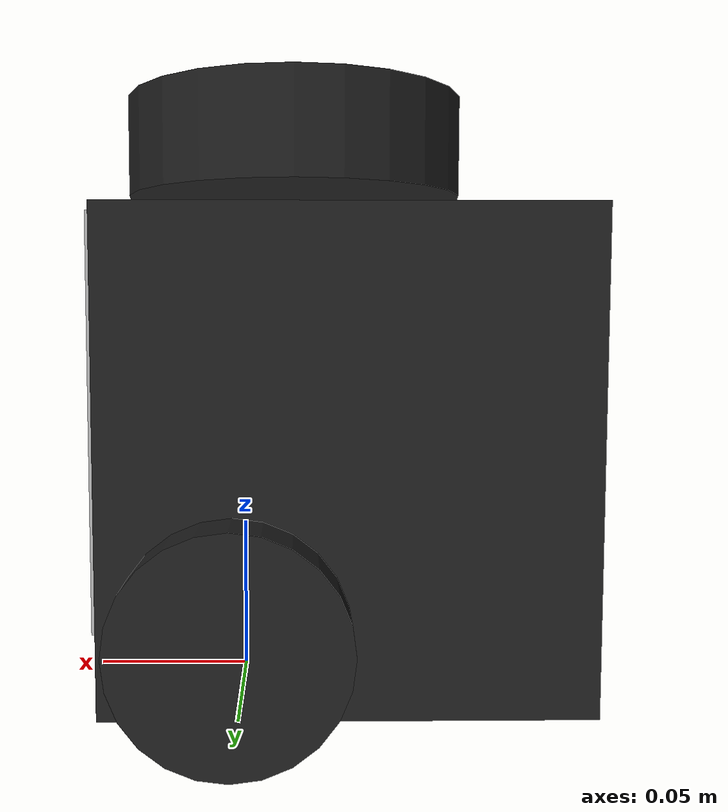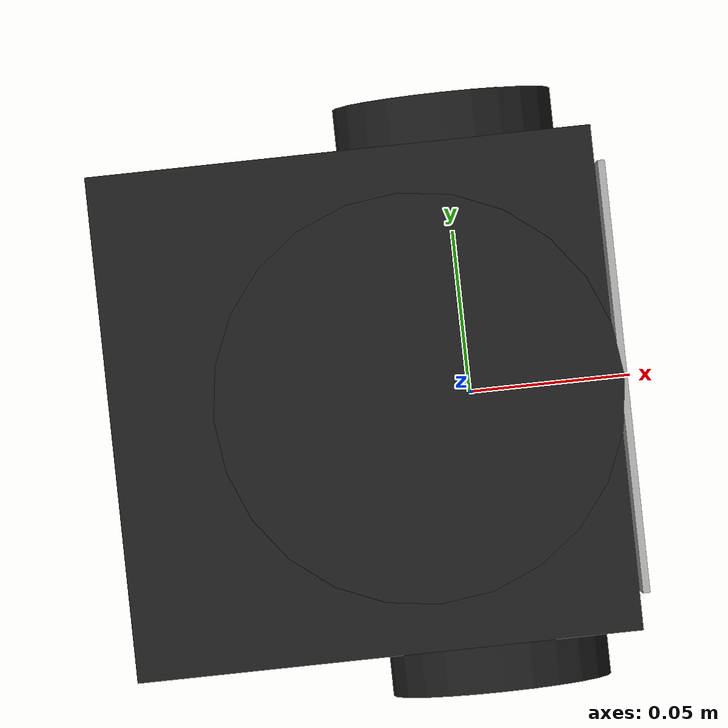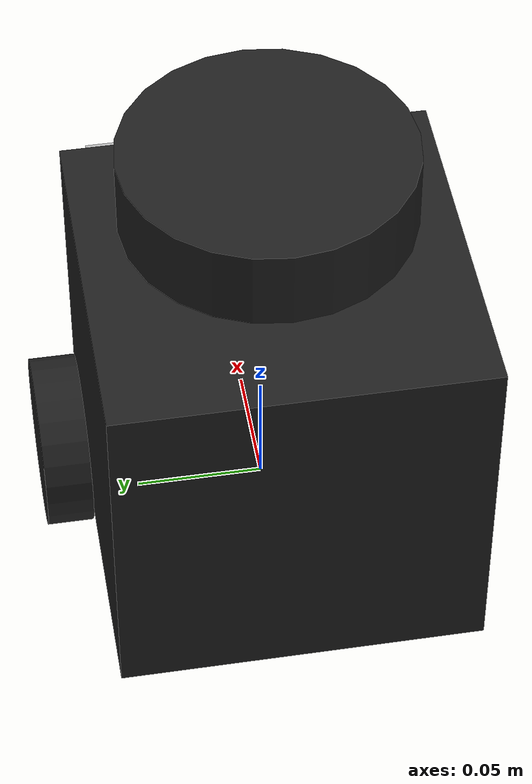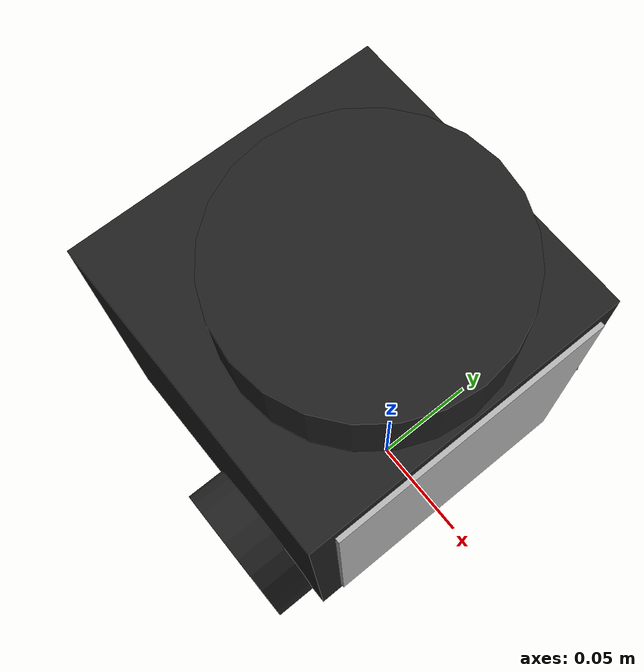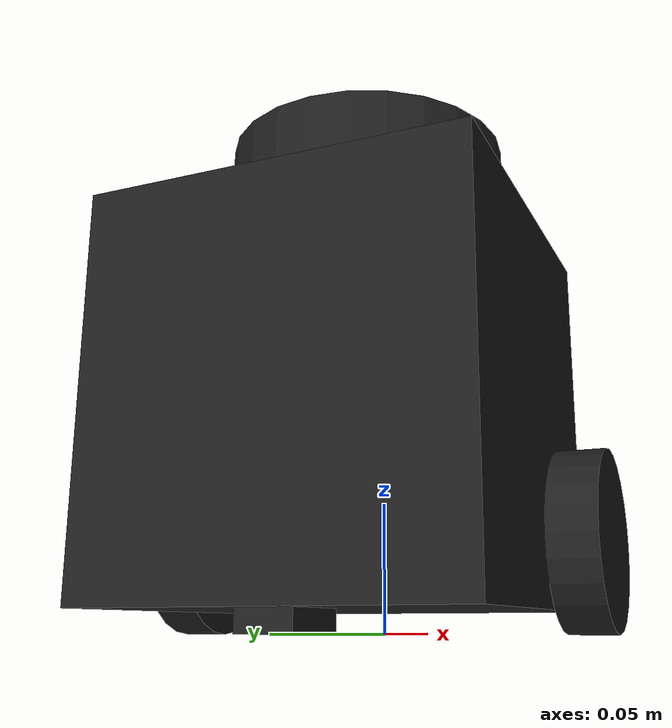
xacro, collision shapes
<?xml version="1.0" ?>
<robot name="turtlebot3_burger" xmlns:xacro="http://ros.org/wiki/xacro">
  <xacro:include filename="$(find turtlebot3_description)/urdf/common_properties.xacro"/>
  <xacro:include filename="$(find pkmgr)/urdf/turtlebot3_burger_leader_v2.gazebo.xacro"/>

  <link name="base_footprint"/>

  <joint name="base_joint" type="fixed">
    <parent link="base_footprint"/>
    <child link="base_link"/>
    <origin xyz="0.0 0.0 0.010" rpy="0 0 0"/>
  </joint>

  <link name="base_link">
    <visual>
      <origin xyz="-0.032 0 0.0" rpy="0 0 0"/>
      <geometry>
        <mesh filename="package://turtlebot3_description/meshes/bases/burger_base.stl" scale="0.001 0.001 0.001"/>
      </geometry>
      <material name="light_black"/>
    </visual>

    <collision>
      <origin xyz="-0.032 0 0.070" rpy="0 0 0"/>
      <geometry>
        <box size="0.140 0.140 0.143"/>
      </geometry>
    </collision>

    <inertial>
      <origin xyz="0 0 0" rpy="0 0 0"/>
      <mass value="8.2573504e-01"/>
      <inertia ixx="2.2124416e-03" ixy="-1.2294101e-05" ixz="3.4938785e-05"
               iyy="2.1193702e-03" iyz="-5.0120904e-06"
               izz="2.0064271e-03" />
    </inertial>
  </link>

  <joint name="wheel_left_joint" type="continuous">
    <parent link="base_link"/>
    <child link="wheel_left_link"/>
    <origin xyz="0.0 0.08 0.023" rpy="-1.57 0 0"/>
    <axis xyz="0 0 1"/>
  </joint>

  <link name="wheel_left_link">
    <visual>
      <origin xyz="0 0 0" rpy="1.57 0 0"/>
      <geometry>
        <mesh filename="package://turtlebot3_description/meshes/wheels/left_tire.stl" scale="0.001 0.001 0.001"/>
      </geometry>
      <material name="dark"/>
    </visual>

    <collision>
      <origin xyz="0 0 0" rpy="0 0 0"/>
      <geometry>
        <cylinder length="0.018" radius="0.033"/>
      </geometry>
    </collision>

    <inertial>
      <origin xyz="0 0 0" />
      <mass value="2.8498940e-02" />
      <inertia ixx="1.1175580e-05" ixy="-4.2369783e-11" ixz="-5.9381719e-09"
               iyy="1.1192413e-05" iyz="-1.4400107e-11"
               izz="2.0712558e-05" />
      </inertial>
  </link>

  <joint name="wheel_right_joint" type="continuous">
    <parent link="base_link"/>
    <child link="wheel_right_link"/>
    <origin xyz="0.0 -0.080 0.023" rpy="-1.57 0 0"/>
    <axis xyz="0 0 1"/>
  </joint>

  <link name="wheel_right_link">
    <visual>
      <origin xyz="0 0 0" rpy="1.57 0 0"/>
      <geometry>
        <mesh filename="package://turtlebot3_description/meshes/wheels/right_tire.stl" scale="0.001 0.001 0.001"/>
      </geometry>
      <material name="dark"/>
    </visual>

    <collision>
      <origin xyz="0 0 0" rpy="0 0 0"/>
      <geometry>
        <cylinder length="0.018" radius="0.033"/>
      </geometry>
    </collision>

    <inertial>
      <origin xyz="0 0 0" />
      <mass value="2.8498940e-02" />
      <inertia ixx="1.1175580e-05" ixy="-4.2369783e-11" ixz="-5.9381719e-09"
               iyy="1.1192413e-05" iyz="-1.4400107e-11"
               izz="2.0712558e-05" />
      </inertial>
  </link>

  <joint name="caster_back_joint" type="fixed">
    <parent link="base_link"/>
    <child link="caster_back_link"/>
    <origin xyz="-0.081 0 -0.004" rpy="-1.57 0 0"/>
  </joint>

  <link name="caster_back_link">
    <collision>
      <origin xyz="0 0.001 0" rpy="0 0 0"/>
      <geometry>
        <box size="0.030 0.009 0.020"/>
      </geometry>
    </collision>

    <inertial>
      <origin xyz="0 0 0" />
      <mass value="0.005" />
      <inertia ixx="0.001" ixy="0.0" ixz="0.0"
               iyy="0.001" iyz="0.0"
               izz="0.001" />
    </inertial>
  </link>

  <joint name="imu_joint" type="fixed">
    <parent link="base_link"/>
    <child link="imu_link"/>
    <origin xyz="-0.032 0 0.068" rpy="0 0 0"/>
  </joint>

  <link name="imu_link"/>

  <joint name="scan_joint" type="fixed">
    <parent link="base_link"/>
    <child link="base_scan"/>
    <origin xyz="-0.032 0 0.172" rpy="0 0 0"/>
  </joint>

  <link name="base_scan">
    <visual>
      <origin xyz="0 0 0.0" rpy="0 0 0"/>
      <geometry>
        <mesh filename="package://turtlebot3_description/meshes/sensors/lds.stl" scale="0.001 0.001 0.001"/>
      </geometry>
      <material name="dark"/>
    </visual>

    <collision>
      <origin xyz="0.015 0 -0.0065" rpy="0 0 0"/>
      <geometry>
        <cylinder length="0.0315" radius="0.055"/>
      </geometry>
    </collision>

    <inertial>
      <mass value="0.114" />
      <origin xyz="0 0 0" />
      <inertia ixx="0.001" ixy="0.0" ixz="0.0"
               iyy="0.001" iyz="0.0"
               izz="0.001" />
    </inertial>
  </link>

  <link name="aruco_front">
    <visual>
      <origin xyz="0 0.06 -0.07" rpy="0 0 3.14159265"/>
      <geometry>
        <mesh filename="package://pkmgr/meshes/aruco_front.dae" />
      </geometry>
    </visual>
    <collision>
      <origin xyz="0 0 0" rpy="0 0 0"/>
      <geometry>
        <box size="0.002 0.12 0.12"/>
      </geometry>
    </collision>
    <inertial>
      <origin xyz="0 0 0" />
      <mass value="0.005" />
      <inertia ixx="0.001" ixy="0.0" ixz="0.0"
               iyy="0.001" iyz="0.0"
               izz="0.001" />
    </inertial>
  </link>

  <joint name="aruco_front_joint" type="fixed">
    <origin xyz="0.04 0.0 0.08" rpy="0 0 0"/>
    <parent link="base_link"/>
    <child link="aruco_front"/>
  </joint>

  <link name="aruco_left">
    <visual>
      <origin xyz="-0.13 0.094 -0.07" rpy="0 0 4.7123889804"/>
      <geometry>
        <mesh filename="package://pkmgr/meshes/aruco_left.dae" />
      </geometry>
    </visual>
    <collision>
      <origin xyz="0 0 0" rpy="0 0 0"/>
      <geometry>
        <box size="0.002 0.12 0.12"/>
      </geometry>
    </collision>
    <inertial>
      <origin xyz="0 0 0" />
      <mass value="0.005" />
      <inertia ixx="0.001" ixy="0.0" ixz="0.0"
               iyy="0.001" iyz="0.0"
               izz="0.001" />
    </inertial>
  </link>

  <joint name="aruco_left_joint" type="fixed">
    <origin xyz="0.04 0.0 0.08" rpy="0 0 0"/>
    <parent link="base_link"/>
    <child link="aruco_left"/>
  </joint>

  <link name="aruco_back">
    <visual>
      <origin xyz="-0.146 -0.06 -0.07" rpy="0 0 0"/>
      <geometry>
        <mesh filename="package://pkmgr/meshes/aruco_back.dae" />
      </geometry>
    </visual>
    <collision>
      <origin xyz="0 0 0" rpy="0 0 0"/>
      <geometry>
        <box size="0.002 0.12 0.12"/>
      </geometry>
    </collision>
    <inertial>
      <origin xyz="0 0 0" />
      <mass value="0.005" />
      <inertia ixx="0.001" ixy="0.0" ixz="0.0"
               iyy="0.001" iyz="0.0"
               izz="0.001" />
    </inertial>
  </link>

  <joint name="aruco_back_joint" type="fixed">
    <origin xyz="0.04 0.0 0.08" rpy="0 0 0"/>
    <parent link="base_link"/>
    <child link="aruco_back"/>
  </joint>

    <link name="aruco_right">
    <visual>
      <origin xyz="-0.01 -0.094 -0.07" rpy="0 0 1.5707963268"/>
      <geometry>
        <mesh filename="package://pkmgr/meshes/aruco_right.dae" />
      </geometry>
    </visual>
    <collision>
      <origin xyz="0 0 0" rpy="0 0 0"/>
      <geometry>
        <box size="0.002 0.12 0.12"/>
      </geometry>
    </collision>
    <inertial>
      <origin xyz="0 0 0" />
      <mass value="0.005" />
      <inertia ixx="0.001" ixy="0.0" ixz="0.0"
               iyy="0.001" iyz="0.0"
               izz="0.001" />
    </inertial>
  </link>

  <joint name="aruco_right_joint" type="fixed">
    <origin xyz="0.04 0.0 0.08" rpy="0 0 0"/>
    <parent link="base_link"/>
    <child link="aruco_right"/>
  </joint>

</robot>
